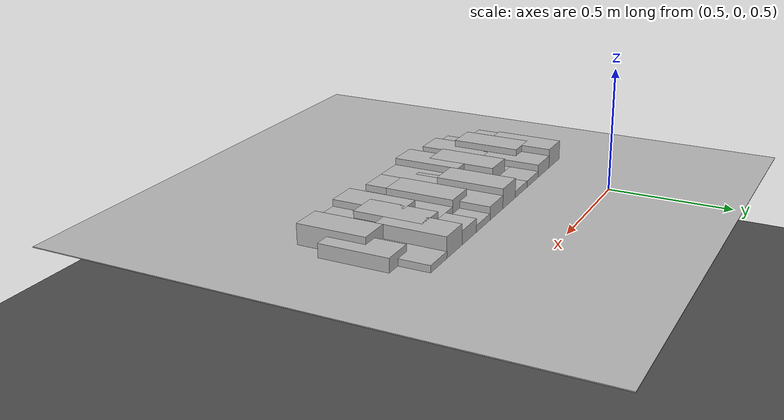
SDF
<sdf version="1.6">
 <world name="default">
  <model name="ground_plane">
   <static>1</static>
   <link name="link">
    <collision name="collision">
     <geometry><plane><normal>0 0 1</normal><size>100 100</size></plane></geometry>
     <surface><friction><ode><mu>100</mu><mu2>50</mu2></ode></friction></surface>
    </collision>
    <visual name="visual">
     <cast_shadows>0</cast_shadows>
     <geometry><plane><normal>0 0 1</normal><size>100 100</size></plane></geometry>
     <material>
      <script><uri>file://media/materials/scripts/gazebo.material</uri><name>Gazebo/Grey</name></script>
     </material>
    </visual>
   </link>
  </model>
  <model name="frc2016_roughterrain_0">
   <link name="link_clone_3">
    <pose>1.31056 -0.440094 -0.073164 0 -0 0</pose>
    <inertial>
     <inertia><ixx>nan</ixx><ixy>0</ixy><ixz>0</ixz><iyy>nan</iyy><iyz>0</iyz><izz>nan</izz></inertia>
     <mass>0</mass>
    </inertial>
    <visual name="row1_block3_md">
     <pose>0.28575 0.1143 0.10968 0 -0 0</pose>
     <geometry><box><size>0.115452 0.257474 0.0508</size></box></geometry>
     <material><shader type="pixel"/></material>
    </visual>
    <visual name="row1_block2_lg">
     <pose>0.40005 0.1143 0.12238 0 -0 0</pose>
     <geometry><box><size>0.115452 0.257474 0.0762</size></box></geometry>
     <material><shader type="pixel"/></material>
    </visual>
    <visual name="row1_block4_sm">
     <pose>0.17145 0.1143 0.09698 0 -0 0</pose>
     <geometry><box><size>0.115452 0.257474 0.0254</size></box></geometry>
     <material><shader type="pixel"/></material>
    </visual>
    <visual name="platform">
     <pose>0 0 0.08269 0 -0 0</pose>
     <geometry><box><size>1.91826 2.01688 0.003175</size></box></geometry>
     <material><shader type="pixel"/></material>
    </visual>
    <visual name="row1_block1_sm">
     <pose>0.51435 0.1143 0.09698 0 -0 0</pose>
     <geometry><box><size>0.115452 0.257474 0.0254</size></box></geometry>
     <material><shader type="pixel"/></material>
    </visual>
    <visual name="row1_block5_md">
     <pose>0.05715 0.1143 0.10968 0 -0 0</pose>
     <geometry><box><size>0.115452 0.257474 0.0508</size></box></geometry>
     <material><shader type="pixel"/></material>
    </visual>
    <visual name="row1_block6_lg">
     <pose>-0.05715 0.1143 0.12238 0 -0 0</pose>
     <geometry><box><size>0.115452 0.257474 0.0762</size></box></geometry>
     <material><shader type="pixel"/></material>
    </visual>
    <visual name="row1_block7_sm">
     <pose>-0.17145 0.1143 0.09698 0 -0 0</pose>
     <geometry><box><size>0.115452 0.257474 0.0254</size></box></geometry>
     <material><shader type="pixel"/></material>
    </visual>
    <visual name="row1_block9_md">
     <pose>-0.40005 0.1143 0.10968 0 -0 0</pose>
     <geometry><box><size>0.115452 0.257474 0.0508</size></box></geometry>
     <material><shader type="pixel"/></material>
    </visual>
    <visual name="row1_block8_sm">
     <pose>-0.28575 0.1143 0.09698 0 -0 0</pose>
     <geometry><box><size>0.115452 0.257474 0.0254</size></box></geometry>
     <material><shader type="pixel"/></material>
    </visual>
    <visual name="row1_block10_lg">
     <pose>-0.51435 0.1143 0.12238 0 -0 0</pose>
     <geometry><box><size>0.115452 0.257474 0.0762</size></box></geometry>
     <material><shader type="pixel"/></material>
    </visual>
    <visual name="row2_block1_md">
     <pose>0.5715 0 0.10968 0 -0 0</pose>
     <geometry><box><size>0.115452 0.257474 0.0508</size></box></geometry>
     <material><shader type="pixel"/></material>
    </visual>
    <visual name="row2_block2_sm">
     <pose>0.4572 0 0.09698 0 -0 0</pose>
     <geometry><box><size>0.115452 0.257474 0.0254</size></box></geometry>
     <material><shader type="pixel"/></material>
    </visual>
    <visual name="row2_block3_lg">
     <pose>0.3429 0 0.12238 0 -0 0</pose>
     <geometry><box><size>0.115452 0.257474 0.0762</size></box></geometry>
     <material><shader type="pixel"/></material>
    </visual>
    <visual name="row2_block4_md">
     <pose>0.2286 0 0.10968 0 -0 0</pose>
     <geometry><box><size>0.115452 0.257474 0.0508</size></box></geometry>
     <material><shader type="pixel"/></material>
    </visual>
    <visual name="row2_block5_lg">
     <pose>0.1143 0 0.12238 0 -0 0</pose>
     <geometry><box><size>0.115452 0.257474 0.0762</size></box></geometry>
     <material><shader type="pixel"/></material>
    </visual>
    <visual name="row2_block6_sm">
     <pose>0 0 0.09698 0 -0 0</pose>
     <geometry><box><size>0.115452 0.257474 0.0254</size></box></geometry>
     <material><shader type="pixel"/></material>
    </visual>
    <visual name="row2_block7_md">
     <pose>-0.1143 0 0.10968 0 -0 0</pose>
     <geometry><box><size>0.115452 0.257474 0.0508</size></box></geometry>
     <material><shader type="pixel"/></material>
    </visual>
    <visual name="row2_block8_lg">
     <pose>-0.2286 0 0.12238 0 -0 0</pose>
     <geometry><box><size>0.115452 0.257474 0.0762</size></box></geometry>
     <material><shader type="pixel"/></material>
    </visual>
    <visual name="row2_block9_sm">
     <pose>-0.3429 0 0.09698 0 -0 0</pose>
     <geometry><box><size>0.115452 0.257474 0.0254</size></box></geometry>
     <material><shader type="pixel"/></material>
    </visual>
    <visual name="row2_block10_lg">
     <pose>-0.4572 0 0.12238 0 -0 0</pose>
     <geometry><box><size>0.115452 0.257474 0.0762</size></box></geometry>
     <material><shader type="pixel"/></material>
    </visual>
    <visual name="row2_block11_md">
     <pose>-0.5715 0 0.10968 0 -0 0</pose>
     <geometry><box><size>0.115452 0.257474 0.0508</size></box></geometry>
     <material><shader type="pixel"/></material>
    </visual>
    <visual name="row3_block2_md">
     <pose>0.40005 -0.1143 0.10968 0 -0 0</pose>
     <geometry><box><size>0.115452 0.257474 0.0508</size></box></geometry>
     <material><shader type="pixel"/></material>
    </visual>
    <visual name="row3_block1_lg">
     <pose>0.51435 -0.1143 0.12238 0 -0 0</pose>
     <geometry><box><size>0.115452 0.257474 0.0762</size></box></geometry>
     <material><shader type="pixel"/></material>
    </visual>
    <visual name="row3_block3_lg">
     <pose>0.28575 -0.1143 0.12238 0 -0 0</pose>
     <geometry><box><size>0.115452 0.257474 0.0762</size></box></geometry>
     <material><shader type="pixel"/></material>
    </visual>
    <visual name="row3_block4_sm">
     <pose>0.17145 -0.1143 0.09698 0 -0 0</pose>
     <geometry><box><size>0.115452 0.257474 0.0254</size></box></geometry>
     <material><shader type="pixel"/></material>
    </visual>
    <visual name="row3_block5_md">
     <pose>0.05715 -0.1143 0.10968 0 -0 0</pose>
     <geometry><box><size>0.115452 0.257474 0.0508</size></box></geometry>
     <material><shader type="pixel"/></material>
    </visual>
    <visual name="row3_block6_md">
     <pose>-0.05715 -0.1143 0.10968 0 -0 0</pose>
     <geometry><box><size>0.115452 0.257474 0.0508</size></box></geometry>
     <material><shader type="pixel"/></material>
    </visual>
    <visual name="row3_block7_lg">
     <pose>-0.17145 -0.1143 0.12238 0 -0 0</pose>
     <geometry><box><size>0.115452 0.257474 0.0762</size></box></geometry>
     <material><shader type="pixel"/></material>
    </visual>
    <visual name="row3_block8_sm">
     <pose>-0.28575 -0.1143 0.09698 0 -0 0</pose>
     <geometry><box><size>0.115452 0.257474 0.0254</size></box></geometry>
     <material><shader type="pixel"/></material>
    </visual>
    <visual name="row3_block9_md">
     <pose>-0.40005 -0.1143 0.10968 0 -0 0</pose>
     <geometry><box><size>0.115452 0.257474 0.0508</size></box></geometry>
     <material><shader type="pixel"/></material>
    </visual>
    <visual name="row3_block10_sm">
     <pose>-0.51435 -0.1143 0.09698 0 -0 0</pose>
     <geometry><box><size>0.115452 0.257474 0.0254</size></box></geometry>
     <material><shader type="pixel"/></material>
    </visual>
    <collision name="row2_block5_lg_0">
     <pose>0.1143 0 0.12238 0 -0 0</pose>
     <geometry><box><size>0.115452 0.257474 0.0762</size></box></geometry>
     <surface>
      <friction>
       <ode><mu>1</mu><mu2>1</mu2><fdir1>0 0 0</fdir1><slip1>0</slip1><slip2>0</slip2></ode>
       <torsional>
        <coefficient>1</coefficient>
        <patch_radius>0</patch_radius>
        <surface_radius>0</surface_radius>
        <use_patch_radius>1</use_patch_radius>
        <ode><slip>0</slip></ode>
       </torsional>
      </friction>
      <bounce><restitution_coefficient>0</restitution_coefficient><threshold>1e+06</threshold></bounce>
      <contact>
       <collide_without_contact>0</collide_without_contact>
       <collide_without_contact_bitmask>1</collide_without_contact_bitmask>
       <collide_bitmask>1</collide_bitmask>
       <ode>
        <soft_cfm>0</soft_cfm>
        <soft_erp>0.2</soft_erp>
        <kp>1e+13</kp>
        <kd>1</kd>
        <max_vel>0.01</max_vel>
        <min_depth>0</min_depth>
       </ode>
       <bullet>
        <split_impulse>1</split_impulse>
        <split_impulse_penetration_threshold>-0.01</split_impulse_penetration_threshold>
        <soft_cfm>0</soft_cfm>
        <soft_erp>0.2</soft_erp>
        <kp>1e+13</kp>
        <kd>1</kd>
       </bullet>
      </contact>
     </surface>
    </collision>
    <collision name="platform_0">
     <pose>0 0 0.08269 0 -0 0</pose>
     <geometry><box><size>1.91826 2.01688 0.003175</size></box></geometry>
     <surface>
      <friction>
       <ode><mu>1</mu><mu2>1</mu2><fdir1>0 0 0</fdir1><slip1>0</slip1><slip2>0</slip2></ode>
       <torsional>
        <coefficient>1</coefficient>
        <patch_radius>0</patch_radius>
        <surface_radius>0</surface_radius>
        <use_patch_radius>1</use_patch_radius>
        <ode><slip>0</slip></ode>
       </torsional>
      </friction>
      <bounce><restitution_coefficient>0</restitution_coefficient><threshold>1e+06</threshold></bounce>
      <contact>
       <collide_without_contact>0</collide_without_contact>
       <collide_without_contact_bitmask>1</collide_without_contact_bitmask>
       <collide_bitmask>1</collide_bitmask>
       <ode>
        <soft_cfm>0</soft_cfm>
        <soft_erp>0.2</soft_erp>
        <kp>1e+13</kp>
        <kd>1</kd>
        <max_vel>0.01</max_vel>
        <min_depth>0</min_depth>
       </ode>
       <bullet>
        <split_impulse>1</split_impulse>
        <split_impulse_penetration_threshold>-0.01</split_impulse_penetration_threshold>
        <soft_cfm>0</soft_cfm>
        <soft_erp>0.2</soft_erp>
        <kp>1e+13</kp>
        <kd>1</kd>
       </bullet>
      </contact>
     </surface>
    </collision>
    <collision name="row1_block1_sm_0">
     <pose>0.51435 0.1143 0.09698 0 -0 0</pose>
     <geometry><box><size>0.115452 0.257474 0.0254</size></box></geometry>
     <surface>
      <friction>
       <ode><mu>1</mu><mu2>1</mu2><fdir1>0 0 0</fdir1><slip1>0</slip1><slip2>0</slip2></ode>
       <torsional>
        <coefficient>1</coefficient>
        <patch_radius>0</patch_radius>
        <surface_radius>0</surface_radius>
        <use_patch_radius>1</use_patch_radius>
        <ode><slip>0</slip></ode>
       </torsional>
      </friction>
      <bounce><restitution_coefficient>0</restitution_coefficient><threshold>1e+06</threshold></bounce>
      <contact>
       <collide_without_contact>0</collide_without_contact>
       <collide_without_contact_bitmask>1</collide_without_contact_bitmask>
       <collide_bitmask>1</collide_bitmask>
       <ode>
        <soft_cfm>0</soft_cfm>
        <soft_erp>0.2</soft_erp>
        <kp>1e+13</kp>
        <kd>1</kd>
        <max_vel>0.01</max_vel>
        <min_depth>0</min_depth>
       </ode>
       <bullet>
        <split_impulse>1</split_impulse>
        <split_impulse_penetration_threshold>-0.01</split_impulse_penetration_threshold>
        <soft_cfm>0</soft_cfm>
        <soft_erp>0.2</soft_erp>
        <kp>1e+13</kp>
        <kd>1</kd>
       </bullet>
      </contact>
     </surface>
    </collision>
    <collision name="row1_block5_md_0">
     <pose>0.05715 0.1143 0.10968 0 -0 0</pose>
     <geometry><box><size>0.115452 0.257474 0.0508</size></box></geometry>
     <surface>
      <friction>
       <ode><mu>1</mu><mu2>1</mu2><fdir1>0 0 0</fdir1><slip1>0</slip1><slip2>0</slip2></ode>
       <torsional>
        <coefficient>1</coefficient>
        <patch_radius>0</patch_radius>
        <surface_radius>0</surface_radius>
        <use_patch_radius>1</use_patch_radius>
        <ode><slip>0</slip></ode>
       </torsional>
      </friction>
      <bounce><restitution_coefficient>0</restitution_coefficient><threshold>1e+06</threshold></bounce>
      <contact>
       <collide_without_contact>0</collide_without_contact>
       <collide_without_contact_bitmask>1</collide_without_contact_bitmask>
       <collide_bitmask>1</collide_bitmask>
       <ode>
        <soft_cfm>0</soft_cfm>
        <soft_erp>0.2</soft_erp>
        <kp>1e+13</kp>
        <kd>1</kd>
        <max_vel>0.01</max_vel>
        <min_depth>0</min_depth>
       </ode>
       <bullet>
        <split_impulse>1</split_impulse>
        <split_impulse_penetration_threshold>-0.01</split_impulse_penetration_threshold>
        <soft_cfm>0</soft_cfm>
        <soft_erp>0.2</soft_erp>
        <kp>1e+13</kp>
        <kd>1</kd>
       </bullet>
      </contact>
     </surface>
    </collision>
    <collision name="row1_block3_md_0">
     <pose>0.28575 0.1143 0.10968 0 -0 0</pose>
     <geometry><box><size>0.115452 0.257474 0.0508</size></box></geometry>
     <surface>
      <friction>
       <ode><mu>1</mu><mu2>1</mu2><fdir1>0 0 0</fdir1><slip1>0</slip1><slip2>0</slip2></ode>
       <torsional>
        <coefficient>1</coefficient>
        <patch_radius>0</patch_radius>
        <surface_radius>0</surface_radius>
        <use_patch_radius>1</use_patch_radius>
        <ode><slip>0</slip></ode>
       </torsional>
      </friction>
      <bounce><restitution_coefficient>0</restitution_coefficient><threshold>1e+06</threshold></bounce>
      <contact>
       <collide_without_contact>0</collide_without_contact>
       <collide_without_contact_bitmask>1</collide_without_contact_bitmask>
       <collide_bitmask>1</collide_bitmask>
       <ode>
        <soft_cfm>0</soft_cfm>
        <soft_erp>0.2</soft_erp>
        <kp>1e+13</kp>
        <kd>1</kd>
        <max_vel>0.01</max_vel>
        <min_depth>0</min_depth>
       </ode>
       <bullet>
        <split_impulse>1</split_impulse>
        <split_impulse_penetration_threshold>-0.01</split_impulse_penetration_threshold>
        <soft_cfm>0</soft_cfm>
        <soft_erp>0.2</soft_erp>
        <kp>1e+13</kp>
        <kd>1</kd>
       </bullet>
      </contact>
     </surface>
    </collision>
    <collision name="row1_block2_lg_0">
     <pose>0.40005 0.1143 0.12238 0 -0 0</pose>
     <geometry><box><size>0.115452 0.257474 0.0762</size></box></geometry>
     <surface>
      <friction>
       <ode><mu>1</mu><mu2>1</mu2><fdir1>0 0 0</fdir1><slip1>0</slip1><slip2>0</slip2></ode>
       <torsional>
        <coefficient>1</coefficient>
        <patch_radius>0</patch_radius>
        <surface_radius>0</surface_radius>
        <use_patch_radius>1</use_patch_radius>
        <ode><slip>0</slip></ode>
       </torsional>
      </friction>
      <bounce><restitution_coefficient>0</restitution_coefficient><threshold>1e+06</threshold></bounce>
      <contact>
       <collide_without_contact>0</collide_without_contact>
       <collide_without_contact_bitmask>1</collide_without_contact_bitmask>
       <collide_bitmask>1</collide_bitmask>
       <ode>
        <soft_cfm>0</soft_cfm>
        <soft_erp>0.2</soft_erp>
        <kp>1e+13</kp>
        <kd>1</kd>
        <max_vel>0.01</max_vel>
        <min_depth>0</min_depth>
       </ode>
       <bullet>
        <split_impulse>1</split_impulse>
        <split_impulse_penetration_threshold>-0.01</split_impulse_penetration_threshold>
        <soft_cfm>0</soft_cfm>
        <soft_erp>0.2</soft_erp>
        <kp>1e+13</kp>
        <kd>1</kd>
       </bullet>
      </contact>
     </surface>
    </collision>
    <collision name="row1_block4_sm_0">
     <pose>0.17145 0.1143 0.09698 0 -0 0</pose>
     <geometry><box><size>0.115452 0.257474 0.0254</size></box></geometry>
     <surface>
      <friction>
       <ode><mu>1</mu><mu2>1</mu2><fdir1>0 0 0</fdir1><slip1>0</slip1><slip2>0</slip2></ode>
       <torsional>
        <coefficient>1</coefficient>
        <patch_radius>0</patch_radius>
        <surface_radius>0</surface_radius>
        <use_patch_radius>1</use_patch_radius>
        <ode><slip>0</slip></ode>
       </torsional>
      </friction>
      <bounce><restitution_coefficient>0</restitution_coefficient><threshold>1e+06</threshold></bounce>
      <contact>
       <collide_without_contact>0</collide_without_contact>
       <collide_without_contact_bitmask>1</collide_without_contact_bitmask>
       <collide_bitmask>1</collide_bitmask>
       <ode>
        <soft_cfm>0</soft_cfm>
        <soft_erp>0.2</soft_erp>
        <kp>1e+13</kp>
        <kd>1</kd>
        <max_vel>0.01</max_vel>
        <min_depth>0</min_depth>
       </ode>
       <bullet>
        <split_impulse>1</split_impulse>
        <split_impulse_penetration_threshold>-0.01</split_impulse_penetration_threshold>
        <soft_cfm>0</soft_cfm>
        <soft_erp>0.2</soft_erp>
        <kp>1e+13</kp>
        <kd>1</kd>
       </bullet>
      </contact>
     </surface>
    </collision>
    <collision name="row1_block8_sm_0">
     <pose>-0.28575 0.1143 0.09698 0 -0 0</pose>
     <geometry><box><size>0.115452 0.257474 0.0254</size></box></geometry>
     <surface>
      <friction>
       <ode><mu>1</mu><mu2>1</mu2><fdir1>0 0 0</fdir1><slip1>0</slip1><slip2>0</slip2></ode>
       <torsional>
        <coefficient>1</coefficient>
        <patch_radius>0</patch_radius>
        <surface_radius>0</surface_radius>
        <use_patch_radius>1</use_patch_radius>
        <ode><slip>0</slip></ode>
       </torsional>
      </friction>
      <bounce><restitution_coefficient>0</restitution_coefficient><threshold>1e+06</threshold></bounce>
      <contact>
       <collide_without_contact>0</collide_without_contact>
       <collide_without_contact_bitmask>1</collide_without_contact_bitmask>
       <collide_bitmask>1</collide_bitmask>
       <ode>
        <soft_cfm>0</soft_cfm>
        <soft_erp>0.2</soft_erp>
        <kp>1e+13</kp>
        <kd>1</kd>
        <max_vel>0.01</max_vel>
        <min_depth>0</min_depth>
       </ode>
       <bullet>
        <split_impulse>1</split_impulse>
        <split_impulse_penetration_threshold>-0.01</split_impulse_penetration_threshold>
        <soft_cfm>0</soft_cfm>
        <soft_erp>0.2</soft_erp>
        <kp>1e+13</kp>
        <kd>1</kd>
       </bullet>
      </contact>
     </surface>
    </collision>
    <collision name="row1_block6_lg_0">
     <pose>-0.05715 0.1143 0.12238 0 -0 0</pose>
     <geometry><box><size>0.115452 0.257474 0.0762</size></box></geometry>
     <surface>
      <friction>
       <ode><mu>1</mu><mu2>1</mu2><fdir1>0 0 0</fdir1><slip1>0</slip1><slip2>0</slip2></ode>
       <torsional>
        <coefficient>1</coefficient>
        <patch_radius>0</patch_radius>
        <surface_radius>0</surface_radius>
        <use_patch_radius>1</use_patch_radius>
        <ode><slip>0</slip></ode>
       </torsional>
      </friction>
      <bounce><restitution_coefficient>0</restitution_coefficient><threshold>1e+06</threshold></bounce>
      <contact>
       <collide_without_contact>0</collide_without_contact>
       <collide_without_contact_bitmask>1</collide_without_contact_bitmask>
       <collide_bitmask>1</collide_bitmask>
       <ode>
        <soft_cfm>0</soft_cfm>
        <soft_erp>0.2</soft_erp>
        <kp>1e+13</kp>
        <kd>1</kd>
        <max_vel>0.01</max_vel>
        <min_depth>0</min_depth>
       </ode>
       <bullet>
        <split_impulse>1</split_impulse>
        <split_impulse_penetration_threshold>-0.01</split_impulse_penetration_threshold>
        <soft_cfm>0</soft_cfm>
        <soft_erp>0.2</soft_erp>
        <kp>1e+13</kp>
        <kd>1</kd>
       </bullet>
      </contact>
     </surface>
    </collision>
    <collision name="row1_block7_sm_0">
     <pose>-0.17145 0.1143 0.09698 0 -0 0</pose>
     <geometry><box><size>0.115452 0.257474 0.0254</size></box></geometry>
     <surface>
      <friction>
       <ode><mu>1</mu><mu2>1</mu2><fdir1>0 0 0</fdir1><slip1>0</slip1><slip2>0</slip2></ode>
       <torsional>
        <coefficient>1</coefficient>
        <patch_radius>0</patch_radius>
        <surface_radius>0</surface_radius>
        <use_patch_radius>1</use_patch_radius>
        <ode><slip>0</slip></ode>
       </torsional>
      </friction>
      <bounce><restitution_coefficient>0</restitution_coefficient><threshold>1e+06</threshold></bounce>
      <contact>
       <collide_without_contact>0</collide_without_contact>
       <collide_without_contact_bitmask>1</collide_without_contact_bitmask>
       <collide_bitmask>1</collide_bitmask>
       <ode>
        <soft_cfm>0</soft_cfm>
        <soft_erp>0.2</soft_erp>
        <kp>1e+13</kp>
        <kd>1</kd>
        <max_vel>0.01</max_vel>
        <min_depth>0</min_depth>
       </ode>
       <bullet>
        <split_impulse>1</split_impulse>
        <split_impulse_penetration_threshold>-0.01</split_impulse_penetration_threshold>
        <soft_cfm>0</soft_cfm>
        <soft_erp>0.2</soft_erp>
        <kp>1e+13</kp>
        <kd>1</kd>
       </bullet>
      </contact>
     </surface>
    </collision>
    <collision name="row2_block1_md_0">
     <pose>0.5715 0 0.10968 0 -0 0</pose>
     <geometry><box><size>0.115452 0.257474 0.0508</size></box></geometry>
     <surface>
      <friction>
       <ode><mu>1</mu><mu2>1</mu2><fdir1>0 0 0</fdir1><slip1>0</slip1><slip2>0</slip2></ode>
       <torsional>
        <coefficient>1</coefficient>
        <patch_radius>0</patch_radius>
        <surface_radius>0</surface_radius>
        <use_patch_radius>1</use_patch_radius>
        <ode><slip>0</slip></ode>
       </torsional>
      </friction>
      <bounce><restitution_coefficient>0</restitution_coefficient><threshold>1e+06</threshold></bounce>
      <contact>
       <collide_without_contact>0</collide_without_contact>
       <collide_without_contact_bitmask>1</collide_without_contact_bitmask>
       <collide_bitmask>1</collide_bitmask>
       <ode>
        <soft_cfm>0</soft_cfm>
        <soft_erp>0.2</soft_erp>
        <kp>1e+13</kp>
        <kd>1</kd>
        <max_vel>0.01</max_vel>
        <min_depth>0</min_depth>
       </ode>
       <bullet>
        <split_impulse>1</split_impulse>
        <split_impulse_penetration_threshold>-0.01</split_impulse_penetration_threshold>
        <soft_cfm>0</soft_cfm>
        <soft_erp>0.2</soft_erp>
        <kp>1e+13</kp>
        <kd>1</kd>
       </bullet>
      </contact>
     </surface>
    </collision>
    <collision name="row1_block10_lg_0">
     <pose>-0.51435 0.1143 0.12238 0 -0 0</pose>
     <geometry><box><size>0.115452 0.257474 0.0762</size></box></geometry>
     <surface>
      <friction>
       <ode><mu>1</mu><mu2>1</mu2><fdir1>0 0 0</fdir1><slip1>0</slip1><slip2>0</slip2></ode>
       <torsional>
        <coefficient>1</coefficient>
        <patch_radius>0</patch_radius>
        <surface_radius>0</surface_radius>
        <use_patch_radius>1</use_patch_radius>
        <ode><slip>0</slip></ode>
       </torsional>
      </friction>
      <bounce><restitution_coefficient>0</restitution_coefficient><threshold>1e+06</threshold></bounce>
      <contact>
       <collide_without_contact>0</collide_without_contact>
       <collide_without_contact_bitmask>1</collide_without_contact_bitmask>
       <collide_bitmask>1</collide_bitmask>
       <ode>
        <soft_cfm>0</soft_cfm>
        <soft_erp>0.2</soft_erp>
        <kp>1e+13</kp>
        <kd>1</kd>
        <max_vel>0.01</max_vel>
        <min_depth>0</min_depth>
       </ode>
       <bullet>
        <split_impulse>1</split_impulse>
        <split_impulse_penetration_threshold>-0.01</split_impulse_penetration_threshold>
        <soft_cfm>0</soft_cfm>
        <soft_erp>0.2</soft_erp>
        <kp>1e+13</kp>
        <kd>1</kd>
       </bullet>
      </contact>
     </surface>
    </collision>
    <collision name="row1_block9_md_0">
     <pose>-0.40005 0.1143 0.10968 0 -0 0</pose>
     <geometry><box><size>0.115452 0.257474 0.0508</size></box></geometry>
     <surface>
      <friction>
       <ode><mu>1</mu><mu2>1</mu2><fdir1>0 0 0</fdir1><slip1>0</slip1><slip2>0</slip2></ode>
       <torsional>
        <coefficient>1</coefficient>
        <patch_radius>0</patch_radius>
        <surface_radius>0</surface_radius>
        <use_patch_radius>1</use_patch_radius>
        <ode><slip>0</slip></ode>
       </torsional>
      </friction>
      <bounce><restitution_coefficient>0</restitution_coefficient><threshold>1e+06</threshold></bounce>
      <contact>
       <collide_without_contact>0</collide_without_contact>
       <collide_without_contact_bitmask>1</collide_without_contact_bitmask>
       <collide_bitmask>1</collide_bitmask>
       <ode>
        <soft_cfm>0</soft_cfm>
        <soft_erp>0.2</soft_erp>
        <kp>1e+13</kp>
        <kd>1</kd>
        <max_vel>0.01</max_vel>
        <min_depth>0</min_depth>
       </ode>
       <bullet>
        <split_impulse>1</split_impulse>
        <split_impulse_penetration_threshold>-0.01</split_impulse_penetration_threshold>
        <soft_cfm>0</soft_cfm>
        <soft_erp>0.2</soft_erp>
        <kp>1e+13</kp>
        <kd>1</kd>
       </bullet>
      </contact>
     </surface>
    </collision>
    <collision name="row2_block2_sm_0">
     <pose>0.4572 0 0.09698 0 -0 0</pose>
     <geometry><box><size>0.115452 0.257474 0.0254</size></box></geometry>
     <surface>
      <friction>
       <ode><mu>1</mu><mu2>1</mu2><fdir1>0 0 0</fdir1><slip1>0</slip1><slip2>0</slip2></ode>
       <torsional>
        <coefficient>1</coefficient>
        <patch_radius>0</patch_radius>
        <surface_radius>0</surface_radius>
        <use_patch_radius>1</use_patch_radius>
        <ode><slip>0</slip></ode>
       </torsional>
      </friction>
      <bounce><restitution_coefficient>0</restitution_coefficient><threshold>1e+06</threshold></bounce>
      <contact>
       <collide_without_contact>0</collide_without_contact>
       <collide_without_contact_bitmask>1</collide_without_contact_bitmask>
       <collide_bitmask>1</collide_bitmask>
       <ode>
        <soft_cfm>0</soft_cfm>
        <soft_erp>0.2</soft_erp>
        <kp>1e+13</kp>
        <kd>1</kd>
        <max_vel>0.01</max_vel>
        <min_depth>0</min_depth>
       </ode>
       <bullet>
        <split_impulse>1</split_impulse>
        <split_impulse_penetration_threshold>-0.01</split_impulse_penetration_threshold>
        <soft_cfm>0</soft_cfm>
        <soft_erp>0.2</soft_erp>
        <kp>1e+13</kp>
        <kd>1</kd>
       </bullet>
      </contact>
     </surface>
    </collision>
    <collision name="row2_block4_md_0">
     <pose>0.2286 0 0.10968 0 -0 0</pose>
     <geometry><box><size>0.115452 0.257474 0.0508</size></box></geometry>
     <surface>
      <friction>
       <ode><mu>1</mu><mu2>1</mu2><fdir1>0 0 0</fdir1><slip1>0</slip1><slip2>0</slip2></ode>
       <torsional>
        <coefficient>1</coefficient>
        <patch_radius>0</patch_radius>
        <surface_radius>0</surface_radius>
        <use_patch_radius>1</use_patch_radius>
        <ode><slip>0</slip></ode>
       </torsional>
      </friction>
      <bounce><restitution_coefficient>0</restitution_coefficient><threshold>1e+06</threshold></bounce>
      <contact>
       <collide_without_contact>0</collide_without_contact>
       <collide_without_contact_bitmask>1</collide_without_contact_bitmask>
       <collide_bitmask>1</collide_bitmask>
       <ode>
        <soft_cfm>0</soft_cfm>
        <soft_erp>0.2</soft_erp>
        <kp>1e+13</kp>
        <kd>1</kd>
        <max_vel>0.01</max_vel>
        <min_depth>0</min_depth>
       </ode>
       <bullet>
        <split_impulse>1</split_impulse>
        <split_impulse_penetration_threshold>-0.01</split_impulse_penetration_threshold>
        <soft_cfm>0</soft_cfm>
        <soft_erp>0.2</soft_erp>
        <kp>1e+13</kp>
        <kd>1</kd>
       </bullet>
      </contact>
     </surface>
    </collision>
    <collision name="row2_block3_lg_0">
     <pose>0.3429 0 0.12238 0 -0 0</pose>
     <geometry><box><size>0.115452 0.257474 0.0762</size></box></geometry>
     <surface>
      <friction>
       <ode><mu>1</mu><mu2>1</mu2><fdir1>0 0 0</fdir1><slip1>0</slip1><slip2>0</slip2></ode>
       <torsional>
        <coefficient>1</coefficient>
        <patch_radius>0</patch_radius>
        <surface_radius>0</surface_radius>
        <use_patch_radius>1</use_patch_radius>
        <ode><slip>0</slip></ode>
       </torsional>
      </friction>
      <bounce><restitution_coefficient>0</restitution_coefficient><threshold>1e+06</threshold></bounce>
      <contact>
       <collide_without_contact>0</collide_without_contact>
       <collide_without_contact_bitmask>1</collide_without_contact_bitmask>
       <collide_bitmask>1</collide_bitmask>
       <ode>
        <soft_cfm>0</soft_cfm>
        <soft_erp>0.2</soft_erp>
        <kp>1e+13</kp>
        <kd>1</kd>
        <max_vel>0.01</max_vel>
        <min_depth>0</min_depth>
       </ode>
       <bullet>
        <split_impulse>1</split_impulse>
        <split_impulse_penetration_threshold>-0.01</split_impulse_penetration_threshold>
        <soft_cfm>0</soft_cfm>
        <soft_erp>0.2</soft_erp>
        <kp>1e+13</kp>
        <kd>1</kd>
       </bullet>
      </contact>
     </surface>
    </collision>
    <collision name="row2_block6_sm_0">
     <pose>0 0 0.09698 0 -0 0</pose>
     <geometry><box><size>0.115452 0.257474 0.0254</size></box></geometry>
     <surface>
      <friction>
       <ode><mu>1</mu><mu2>1</mu2><fdir1>0 0 0</fdir1><slip1>0</slip1><slip2>0</slip2></ode>
       <torsional>
        <coefficient>1</coefficient>
        <patch_radius>0</patch_radius>
        <surface_radius>0</surface_radius>
        <use_patch_radius>1</use_patch_radius>
        <ode><slip>0</slip></ode>
       </torsional>
      </friction>
      <bounce><restitution_coefficient>0</restitution_coefficient><threshold>1e+06</threshold></bounce>
      <contact>
       <collide_without_contact>0</collide_without_contact>
       <collide_without_contact_bitmask>1</collide_without_contact_bitmask>
       <collide_bitmask>1</collide_bitmask>
       <ode>
        <soft_cfm>0</soft_cfm>
        <soft_erp>0.2</soft_erp>
        <kp>1e+13</kp>
        <kd>1</kd>
        <max_vel>0.01</max_vel>
        <min_depth>0</min_depth>
       </ode>
       <bullet>
        <split_impulse>1</split_impulse>
        <split_impulse_penetration_threshold>-0.01</split_impulse_penetration_threshold>
        <soft_cfm>0</soft_cfm>
        <soft_erp>0.2</soft_erp>
        <kp>1e+13</kp>
        <kd>1</kd>
       </bullet>
      </contact>
     </surface>
    </collision>
    <collision name="row2_block7_md_0">
     <pose>-0.1143 0 0.10968 0 -0 0</pose>
     <geometry><box><size>0.115452 0.257474 0.0508</size></box></geometry>
     <surface>
      <friction>
       <ode><mu>1</mu><mu2>1</mu2><fdir1>0 0 0</fdir1><slip1>0</slip1><slip2>0</slip2></ode>
       <torsional>
        <coefficient>1</coefficient>
        <patch_radius>0</patch_radius>
        <surface_radius>0</surface_radius>
        <use_patch_radius>1</use_patch_radius>
        <ode><slip>0</slip></ode>
       </torsional>
      </friction>
      <bounce><restitution_coefficient>0</restitution_coefficient><threshold>1e+06</threshold></bounce>
      <contact>
       <collide_without_contact>0</collide_without_contact>
       <collide_without_contact_bitmask>1</collide_without_contact_bitmask>
       <collide_bitmask>1</collide_bitmask>
       <ode>
        <soft_cfm>0</soft_cfm>
        <soft_erp>0.2</soft_erp>
        <kp>1e+13</kp>
        <kd>1</kd>
        <max_vel>0.01</max_vel>
        <min_depth>0</min_depth>
       </ode>
       <bullet>
        <split_impulse>1</split_impulse>
        <split_impulse_penetration_threshold>-0.01</split_impulse_penetration_threshold>
        <soft_cfm>0</soft_cfm>
        <soft_erp>0.2</soft_erp>
        <kp>1e+13</kp>
        <kd>1</kd>
       </bullet>
      </contact>
     </surface>
    </collision>
    <collision name="row2_block10_lg_0">
     <pose>-0.4572 0 0.12238 0 -0 0</pose>
     <geometry><box><size>0.115452 0.257474 0.0762</size></box></geometry>
     <surface>
      <friction>
       <ode><mu>1</mu><mu2>1</mu2><fdir1>0 0 0</fdir1><slip1>0</slip1><slip2>0</slip2></ode>
       <torsional>
        <coefficient>1</coefficient>
        <patch_radius>0</patch_radius>
        <surface_radius>0</surface_radius>
        <use_patch_radius>1</use_patch_radius>
        <ode><slip>0</slip></ode>
       </torsional>
      </friction>
      <bounce><restitution_coefficient>0</restitution_coefficient><threshold>1e+06</threshold></bounce>
      <contact>
       <collide_without_contact>0</collide_without_contact>
       <collide_without_contact_bitmask>1</collide_without_contact_bitmask>
       <collide_bitmask>1</collide_bitmask>
       <ode>
        <soft_cfm>0</soft_cfm>
        <soft_erp>0.2</soft_erp>
        <kp>1e+13</kp>
        <kd>1</kd>
        <max_vel>0.01</max_vel>
        <min_depth>0</min_depth>
       </ode>
       <bullet>
        <split_impulse>1</split_impulse>
        <split_impulse_penetration_threshold>-0.01</split_impulse_penetration_threshold>
        <soft_cfm>0</soft_cfm>
        <soft_erp>0.2</soft_erp>
        <kp>1e+13</kp>
        <kd>1</kd>
       </bullet>
      </contact>
     </surface>
    </collision>
    <collision name="row2_block9_sm_0">
     <pose>-0.3429 0 0.09698 0 -0 0</pose>
     <geometry><box><size>0.115452 0.257474 0.0254</size></box></geometry>
     <surface>
      <friction>
       <ode><mu>1</mu><mu2>1</mu2><fdir1>0 0 0</fdir1><slip1>0</slip1><slip2>0</slip2></ode>
       <torsional>
        <coefficient>1</coefficient>
        <patch_radius>0</patch_radius>
        <surface_radius>0</surface_radius>
        <use_patch_radius>1</use_patch_radius>
        <ode><slip>0</slip></ode>
       </torsional>
      </friction>
      <bounce><restitution_coefficient>0</restitution_coefficient><threshold>1e+06</threshold></bounce>
      <contact>
       <collide_without_contact>0</collide_without_contact>
       <collide_without_contact_bitmask>1</collide_without_contact_bitmask>
       <collide_bitmask>1</collide_bitmask>
       <ode>
        <soft_cfm>0</soft_cfm>
        <soft_erp>0.2</soft_erp>
        <kp>1e+13</kp>
        <kd>1</kd>
        <max_vel>0.01</max_vel>
        <min_depth>0</min_depth>
       </ode>
       <bullet>
        <split_impulse>1</split_impulse>
        <split_impulse_penetration_threshold>-0.01</split_impulse_penetration_threshold>
        <soft_cfm>0</soft_cfm>
        <soft_erp>0.2</soft_erp>
        <kp>1e+13</kp>
        <kd>1</kd>
       </bullet>
      </contact>
     </surface>
    </collision>
    <collision name="row2_block8_lg_0">
     <pose>-0.2286 0 0.12238 0 -0 0</pose>
     <geometry><box><size>0.115452 0.257474 0.0762</size></box></geometry>
     <surface>
      <friction>
       <ode><mu>1</mu><mu2>1</mu2><fdir1>0 0 0</fdir1><slip1>0</slip1><slip2>0</slip2></ode>
       <torsional>
        <coefficient>1</coefficient>
        <patch_radius>0</patch_radius>
        <surface_radius>0</surface_radius>
        <use_patch_radius>1</use_patch_radius>
        <ode><slip>0</slip></ode>
       </torsional>
      </friction>
      <bounce><restitution_coefficient>0</restitution_coefficient><threshold>1e+06</threshold></bounce>
      <contact>
       <collide_without_contact>0</collide_without_contact>
       <collide_without_contact_bitmask>1</collide_without_contact_bitmask>
       <collide_bitmask>1</collide_bitmask>
       <ode>
        <soft_cfm>0</soft_cfm>
        <soft_erp>0.2</soft_erp>
        <kp>1e+13</kp>
        <kd>1</kd>
        <max_vel>0.01</max_vel>
        <min_depth>0</min_depth>
       </ode>
       <bullet>
        <split_impulse>1</split_impulse>
        <split_impulse_penetration_threshold>-0.01</split_impulse_penetration_threshold>
        <soft_cfm>0</soft_cfm>
        <soft_erp>0.2</soft_erp>
        <kp>1e+13</kp>
        <kd>1</kd>
       </bullet>
      </contact>
     </surface>
    </collision>
    <collision name="row2_block11_md_0">
     <pose>-0.5715 0 0.10968 0 -0 0</pose>
     <geometry><box><size>0.115452 0.257474 0.0508</size></box></geometry>
     <surface>
      <friction>
       <ode><mu>1</mu><mu2>1</mu2><fdir1>0 0 0</fdir1><slip1>0</slip1><slip2>0</slip2></ode>
       <torsional>
        <coefficient>1</coefficient>
        <patch_radius>0</patch_radius>
        <surface_radius>0</surface_radius>
        <use_patch_radius>1</use_patch_radius>
        <ode><slip>0</slip></ode>
       </torsional>
      </friction>
      <bounce><restitution_coefficient>0</restitution_coefficient><threshold>1e+06</threshold></bounce>
      <contact>
       <collide_without_contact>0</collide_without_contact>
       <collide_without_contact_bitmask>1</collide_without_contact_bitmask>
       <collide_bitmask>1</collide_bitmask>
       <ode>
        <soft_cfm>0</soft_cfm>
        <soft_erp>0.2</soft_erp>
        <kp>1e+13</kp>
        <kd>1</kd>
        <max_vel>0.01</max_vel>
        <min_depth>0</min_depth>
       </ode>
       <bullet>
        <split_impulse>1</split_impulse>
        <split_impulse_penetration_threshold>-0.01</split_impulse_penetration_threshold>
        <soft_cfm>0</soft_cfm>
        <soft_erp>0.2</soft_erp>
        <kp>1e+13</kp>
        <kd>1</kd>
       </bullet>
      </contact>
     </surface>
    </collision>
    <collision name="row3_block3_lg_0">
     <pose>0.28575 -0.1143 0.12238 0 -0 0</pose>
     <geometry><box><size>0.115452 0.257474 0.0762</size></box></geometry>
     <surface>
      <friction>
       <ode><mu>1</mu><mu2>1</mu2><fdir1>0 0 0</fdir1><slip1>0</slip1><slip2>0</slip2></ode>
       <torsional>
        <coefficient>1</coefficient>
        <patch_radius>0</patch_radius>
        <surface_radius>0</surface_radius>
        <use_patch_radius>1</use_patch_radius>
        <ode><slip>0</slip></ode>
       </torsional>
      </friction>
      <bounce><restitution_coefficient>0</restitution_coefficient><threshold>1e+06</threshold></bounce>
      <contact>
       <collide_without_contact>0</collide_without_contact>
       <collide_without_contact_bitmask>1</collide_without_contact_bitmask>
       <collide_bitmask>1</collide_bitmask>
       <ode>
        <soft_cfm>0</soft_cfm>
        <soft_erp>0.2</soft_erp>
        <kp>1e+13</kp>
        <kd>1</kd>
        <max_vel>0.01</max_vel>
        <min_depth>0</min_depth>
       </ode>
       <bullet>
        <split_impulse>1</split_impulse>
        <split_impulse_penetration_threshold>-0.01</split_impulse_penetration_threshold>
        <soft_cfm>0</soft_cfm>
        <soft_erp>0.2</soft_erp>
        <kp>1e+13</kp>
        <kd>1</kd>
       </bullet>
      </contact>
     </surface>
    </collision>
    <collision name="row3_block2_md_0">
     <pose>0.40005 -0.1143 0.10968 0 -0 0</pose>
     <geometry><box><size>0.115452 0.257474 0.0508</size></box></geometry>
     <surface>
      <friction>
       <ode><mu>1</mu><mu2>1</mu2><fdir1>0 0 0</fdir1><slip1>0</slip1><slip2>0</slip2></ode>
       <torsional>
        <coefficient>1</coefficient>
        <patch_radius>0</patch_radius>
        <surface_radius>0</surface_radius>
        <use_patch_radius>1</use_patch_radius>
        <ode><slip>0</slip></ode>
       </torsional>
      </friction>
      <bounce><restitution_coefficient>0</restitution_coefficient><threshold>1e+06</threshold></bounce>
      <contact>
       <collide_without_contact>0</collide_without_contact>
       <collide_without_contact_bitmask>1</collide_without_contact_bitmask>
       <collide_bitmask>1</collide_bitmask>
       <ode>
        <soft_cfm>0</soft_cfm>
        <soft_erp>0.2</soft_erp>
        <kp>1e+13</kp>
        <kd>1</kd>
        <max_vel>0.01</max_vel>
        <min_depth>0</min_depth>
       </ode>
       <bullet>
        <split_impulse>1</split_impulse>
        <split_impulse_penetration_threshold>-0.01</split_impulse_penetration_threshold>
        <soft_cfm>0</soft_cfm>
        <soft_erp>0.2</soft_erp>
        <kp>1e+13</kp>
        <kd>1</kd>
       </bullet>
      </contact>
     </surface>
    </collision>
    <collision name="row3_block1_lg_0">
     <pose>0.51435 -0.1143 0.12238 0 -0 0</pose>
     <geometry><box><size>0.115452 0.257474 0.0762</size></box></geometry>
     <surface>
      <friction>
       <ode><mu>1</mu><mu2>1</mu2><fdir1>0 0 0</fdir1><slip1>0</slip1><slip2>0</slip2></ode>
       <torsional>
        <coefficient>1</coefficient>
        <patch_radius>0</patch_radius>
        <surface_radius>0</surface_radius>
        <use_patch_radius>1</use_patch_radius>
        <ode><slip>0</slip></ode>
       </torsional>
      </friction>
      <bounce><restitution_coefficient>0</restitution_coefficient><threshold>1e+06</threshold></bounce>
      <contact>
       <collide_without_contact>0</collide_without_contact>
       <collide_without_contact_bitmask>1</collide_without_contact_bitmask>
       <collide_bitmask>1</collide_bitmask>
       <ode>
        <soft_cfm>0</soft_cfm>
        <soft_erp>0.2</soft_erp>
        <kp>1e+13</kp>
        <kd>1</kd>
        <max_vel>0.01</max_vel>
        <min_depth>0</min_depth>
       </ode>
       <bullet>
        <split_impulse>1</split_impulse>
        <split_impulse_penetration_threshold>-0.01</split_impulse_penetration_threshold>
        <soft_cfm>0</soft_cfm>
        <soft_erp>0.2</soft_erp>
        <kp>1e+13</kp>
        <kd>1</kd>
       </bullet>
      </contact>
     </surface>
    </collision>
    <collision name="row3_block4_sm_0">
     <pose>0.17145 -0.1143 0.09698 0 -0 0</pose>
     <geometry><box><size>0.115452 0.257474 0.0254</size></box></geometry>
     <surface>
      <friction>
       <ode><mu>1</mu><mu2>1</mu2><fdir1>0 0 0</fdir1><slip1>0</slip1><slip2>0</slip2></ode>
       <torsional>
        <coefficient>1</coefficient>
        <patch_radius>0</patch_radius>
        <surface_radius>0</surface_radius>
        <use_patch_radius>1</use_patch_radius>
        <ode><slip>0</slip></ode>
       </torsional>
      </friction>
      <bounce><restitution_coefficient>0</restitution_coefficient><threshold>1e+06</threshold></bounce>
      <contact>
       <collide_without_contact>0</collide_without_contact>
       <collide_without_contact_bitmask>1</collide_without_contact_bitmask>
       <collide_bitmask>1</collide_bitmask>
       <ode>
        <soft_cfm>0</soft_cfm>
        <soft_erp>0.2</soft_erp>
        <kp>1e+13</kp>
        <kd>1</kd>
        <max_vel>0.01</max_vel>
        <min_depth>0</min_depth>
       </ode>
       <bullet>
        <split_impulse>1</split_impulse>
        <split_impulse_penetration_threshold>-0.01</split_impulse_penetration_threshold>
        <soft_cfm>0</soft_cfm>
        <soft_erp>0.2</soft_erp>
        <kp>1e+13</kp>
        <kd>1</kd>
       </bullet>
      </contact>
     </surface>
    </collision>
    <collision name="row3_block7_lg_0">
     <pose>-0.17145 -0.1143 0.12238 0 -0 0</pose>
     <geometry><box><size>0.115452 0.257474 0.0762</size></box></geometry>
     <surface>
      <friction>
       <ode><mu>1</mu><mu2>1</mu2><fdir1>0 0 0</fdir1><slip1>0</slip1><slip2>0</slip2></ode>
       <torsional>
        <coefficient>1</coefficient>
        <patch_radius>0</patch_radius>
        <surface_radius>0</surface_radius>
        <use_patch_radius>1</use_patch_radius>
        <ode><slip>0</slip></ode>
       </torsional>
      </friction>
      <bounce><restitution_coefficient>0</restitution_coefficient><threshold>1e+06</threshold></bounce>
      <contact>
       <collide_without_contact>0</collide_without_contact>
       <collide_without_contact_bitmask>1</collide_without_contact_bitmask>
       <collide_bitmask>1</collide_bitmask>
       <ode>
        <soft_cfm>0</soft_cfm>
        <soft_erp>0.2</soft_erp>
        <kp>1e+13</kp>
        <kd>1</kd>
        <max_vel>0.01</max_vel>
        <min_depth>0</min_depth>
       </ode>
       <bullet>
        <split_impulse>1</split_impulse>
        <split_impulse_penetration_threshold>-0.01</split_impulse_penetration_threshold>
        <soft_cfm>0</soft_cfm>
        <soft_erp>0.2</soft_erp>
        <kp>1e+13</kp>
        <kd>1</kd>
       </bullet>
      </contact>
     </surface>
    </collision>
    <collision name="row3_block5_md_0">
     <pose>0.05715 -0.1143 0.10968 0 -0 0</pose>
     <geometry><box><size>0.115452 0.257474 0.0508</size></box></geometry>
     <surface>
      <friction>
       <ode><mu>1</mu><mu2>1</mu2><fdir1>0 0 0</fdir1><slip1>0</slip1><slip2>0</slip2></ode>
       <torsional>
        <coefficient>1</coefficient>
        <patch_radius>0</patch_radius>
        <surface_radius>0</surface_radius>
        <use_patch_radius>1</use_patch_radius>
        <ode><slip>0</slip></ode>
       </torsional>
      </friction>
      <bounce><restitution_coefficient>0</restitution_coefficient><threshold>1e+06</threshold></bounce>
      <contact>
       <collide_without_contact>0</collide_without_contact>
       <collide_without_contact_bitmask>1</collide_without_contact_bitmask>
       <collide_bitmask>1</collide_bitmask>
       <ode>
        <soft_cfm>0</soft_cfm>
        <soft_erp>0.2</soft_erp>
        <kp>1e+13</kp>
        <kd>1</kd>
        <max_vel>0.01</max_vel>
        <min_depth>0</min_depth>
       </ode>
       <bullet>
        <split_impulse>1</split_impulse>
        <split_impulse_penetration_threshold>-0.01</split_impulse_penetration_threshold>
        <soft_cfm>0</soft_cfm>
        <soft_erp>0.2</soft_erp>
        <kp>1e+13</kp>
        <kd>1</kd>
       </bullet>
      </contact>
     </surface>
    </collision>
    <collision name="row3_block6_md_0">
     <pose>-0.05715 -0.1143 0.10968 0 -0 0</pose>
     <geometry><box><size>0.115452 0.257474 0.0508</size></box></geometry>
     <surface>
      <friction>
       <ode><mu>1</mu><mu2>1</mu2><fdir1>0 0 0</fdir1><slip1>0</slip1><slip2>0</slip2></ode>
       <torsional>
        <coefficient>1</coefficient>
        <patch_radius>0</patch_radius>
        <surface_radius>0</surface_radius>
        <use_patch_radius>1</use_patch_radius>
        <ode><slip>0</slip></ode>
       </torsional>
      </friction>
      <bounce><restitution_coefficient>0</restitution_coefficient><threshold>1e+06</threshold></bounce>
      <contact>
       <collide_without_contact>0</collide_without_contact>
       <collide_without_contact_bitmask>1</collide_without_contact_bitmask>
       <collide_bitmask>1</collide_bitmask>
       <ode>
        <soft_cfm>0</soft_cfm>
        <soft_erp>0.2</soft_erp>
        <kp>1e+13</kp>
        <kd>1</kd>
        <max_vel>0.01</max_vel>
        <min_depth>0</min_depth>
       </ode>
       <bullet>
        <split_impulse>1</split_impulse>
        <split_impulse_penetration_threshold>-0.01</split_impulse_penetration_threshold>
        <soft_cfm>0</soft_cfm>
        <soft_erp>0.2</soft_erp>
        <kp>1e+13</kp>
        <kd>1</kd>
       </bullet>
      </contact>
     </surface>
    </collision>
    <collision name="row3_block8_sm_0">
     <pose>-0.28575 -0.1143 0.09698 0 -0 0</pose>
     <geometry><box><size>0.115452 0.257474 0.0254</size></box></geometry>
     <surface>
      <friction>
       <ode><mu>1</mu><mu2>1</mu2><fdir1>0 0 0</fdir1><slip1>0</slip1><slip2>0</slip2></ode>
       <torsional>
        <coefficient>1</coefficient>
        <patch_radius>0</patch_radius>
        <surface_radius>0</surface_radius>
        <use_patch_radius>1</use_patch_radius>
        <ode><slip>0</slip></ode>
       </torsional>
      </friction>
      <bounce><restitution_coefficient>0</restitution_coefficient><threshold>1e+06</threshold></bounce>
      <contact>
       <collide_without_contact>0</collide_without_contact>
       <collide_without_contact_bitmask>1</collide_without_contact_bitmask>
       <collide_bitmask>1</collide_bitmask>
       <ode>
        <soft_cfm>0</soft_cfm>
        <soft_erp>0.2</soft_erp>
        <kp>1e+13</kp>
        <kd>1</kd>
        <max_vel>0.01</max_vel>
        <min_depth>0</min_depth>
       </ode>
       <bullet>
        <split_impulse>1</split_impulse>
        <split_impulse_penetration_threshold>-0.01</split_impulse_penetration_threshold>
        <soft_cfm>0</soft_cfm>
        <soft_erp>0.2</soft_erp>
        <kp>1e+13</kp>
        <kd>1</kd>
       </bullet>
      </contact>
     </surface>
    </collision>
    <collision name="row3_block9_md_0">
     <pose>-0.40005 -0.1143 0.10968 0 -0 0</pose>
     <geometry><box><size>0.115452 0.257474 0.0508</size></box></geometry>
     <surface>
      <friction>
       <ode><mu>1</mu><mu2>1</mu2><fdir1>0 0 0</fdir1><slip1>0</slip1><slip2>0</slip2></ode>
       <torsional>
        <coefficient>1</coefficient>
        <patch_radius>0</patch_radius>
        <surface_radius>0</surface_radius>
        <use_patch_radius>1</use_patch_radius>
        <ode><slip>0</slip></ode>
       </torsional>
      </friction>
      <bounce><restitution_coefficient>0</restitution_coefficient><threshold>1e+06</threshold></bounce>
      <contact>
       <collide_without_contact>0</collide_without_contact>
       <collide_without_contact_bitmask>1</collide_without_contact_bitmask>
       <collide_bitmask>1</collide_bitmask>
       <ode>
        <soft_cfm>0</soft_cfm>
        <soft_erp>0.2</soft_erp>
        <kp>1e+13</kp>
        <kd>1</kd>
        <max_vel>0.01</max_vel>
        <min_depth>0</min_depth>
       </ode>
       <bullet>
        <split_impulse>1</split_impulse>
        <split_impulse_penetration_threshold>-0.01</split_impulse_penetration_threshold>
        <soft_cfm>0</soft_cfm>
        <soft_erp>0.2</soft_erp>
        <kp>1e+13</kp>
        <kd>1</kd>
       </bullet>
      </contact>
     </surface>
    </collision>
    <collision name="row3_block10_sm_0">
     <pose>-0.51435 -0.1143 0.09698 0 -0 0</pose>
     <geometry><box><size>0.115452 0.257474 0.0254</size></box></geometry>
     <surface>
      <friction>
       <ode><mu>1</mu><mu2>1</mu2><fdir1>0 0 0</fdir1><slip1>0</slip1><slip2>0</slip2></ode>
       <torsional>
        <coefficient>1</coefficient>
        <patch_radius>0</patch_radius>
        <surface_radius>0</surface_radius>
        <use_patch_radius>1</use_patch_radius>
        <ode><slip>0</slip></ode>
       </torsional>
      </friction>
      <bounce><restitution_coefficient>0</restitution_coefficient><threshold>1e+06</threshold></bounce>
      <contact>
       <collide_without_contact>0</collide_without_contact>
       <collide_without_contact_bitmask>1</collide_without_contact_bitmask>
       <collide_bitmask>1</collide_bitmask>
       <ode>
        <soft_cfm>0</soft_cfm>
        <soft_erp>0.2</soft_erp>
        <kp>1e+13</kp>
        <kd>1</kd>
        <max_vel>0.01</max_vel>
        <min_depth>0</min_depth>
       </ode>
       <bullet>
        <split_impulse>1</split_impulse>
        <split_impulse_penetration_threshold>-0.01</split_impulse_penetration_threshold>
        <soft_cfm>0</soft_cfm>
        <soft_erp>0.2</soft_erp>
        <kp>1e+13</kp>
        <kd>1</kd>
       </bullet>
      </contact>
     </surface>
    </collision>
   </link>
   <static>1</static>
   <pose>-0.10114 0.027351 0.636987 0 -0 0</pose>
  </model>
  <model name="asphalt_plane">
   <static>1</static>
   <link name="link">
    <collision name="collision"><geometry><box><size>20 20 0.1</size></box></geometry></collision>
    <visual name="visual">
     <cast_shadows>0</cast_shadows>
     <geometry><box><size>20 20 0.1</size></box></geometry>
     <material>
      <script>
       <uri>model://asphalt_plane/materials/scripts</uri>
       <uri>model://asphalt_plane/materials/textures</uri>
       <name>vrc/asphalt</name>
      </script>
     </material>
    </visual>
   </link>
   <pose>0.537328 0.29075 -0.013118 0 -0 0</pose>
  </model>
 </world>
</sdf>
